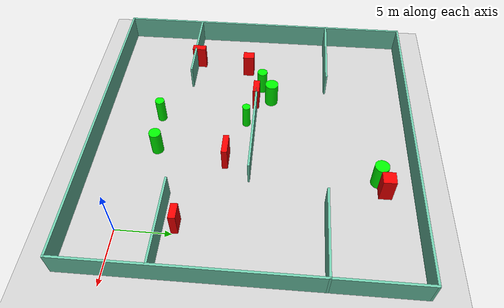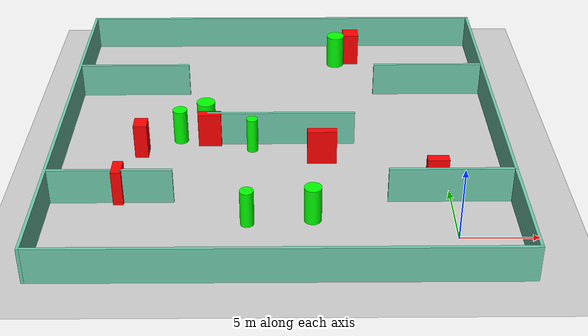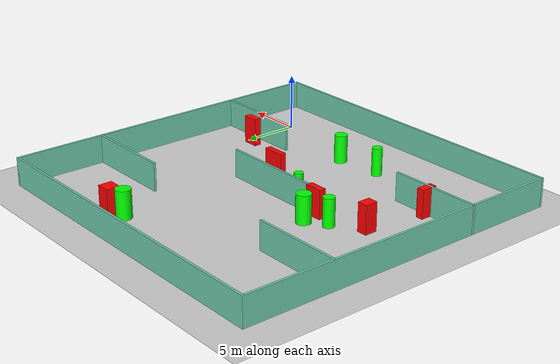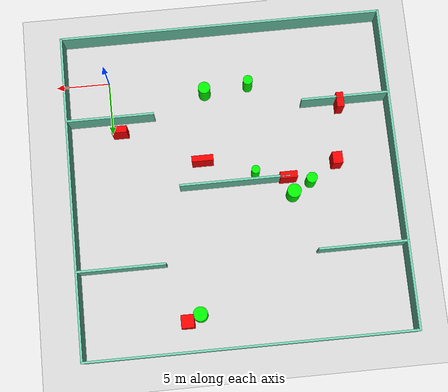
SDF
<sdf version="1.7">
 <world name="default">
  <light name="sun" type="directional">
   <pose>0 0 10 0 -0 0</pose>
   <diffuse>0.8 0.8 0.8 1</diffuse>
   <specular>0.2 0.2 0.2 1</specular>
   <attenuation>
    <range>1000</range>
    <constant>0.9</constant>
    <linear>0.01</linear>
    <quadratic>0.001</quadratic>
   </attenuation>
   <direction>-0.5 0.1 -0.9</direction>
   <spot><inner_angle>0</inner_angle><outer_angle>0</outer_angle><falloff>0</falloff></spot>
  </light>
  <model name="ground_plane">
   <static>1</static>
   <link name="link">
    <collision name="collision">
     <geometry><plane><normal>0 0 1</normal><size>100 100</size></plane></geometry>
     <surface>
      <contact><collide_bitmask>65535</collide_bitmask></contact>
      <friction><ode><mu>100</mu><mu2>50</mu2></ode></friction>
     </surface>
    </collision>
    <visual name="visual">
     <cast_shadows>0</cast_shadows>
     <geometry><plane><normal>0 0 1</normal><size>100 100</size></plane></geometry>
     <material>
      <script><uri>file://media/materials/scripts/gazebo.material</uri><name>Gazebo/Grey</name></script>
     </material>
    </visual>
   </link>
  </model>
  <gravity>0 0 -9.8</gravity>
  <magnetic_field>6e-06 2.3e-05 -4.2e-05</magnetic_field>
  <atmosphere type="adiabatic"/>
  <physics type="ode">
   <max_step_size>0.001</max_step_size>
   <real_time_factor>1</real_time_factor>
   <real_time_update_rate>1000</real_time_update_rate>
  </physics>
  <scene><ambient>0.4 0.4 0.4 1</ambient><background>0.7 0.7 0.7 1</background><shadows>1</shadows></scene>
  <spherical_coordinates>
   <surface_model>EARTH_WGS84</surface_model>
   <latitude_deg>0</latitude_deg>
   <longitude_deg>0</longitude_deg>
   <elevation>0</elevation>
   <heading_deg>0</heading_deg>
  </spherical_coordinates>
  <model name="my_base_walls">
   <link name="Wall_10">
    <collision name="Wall_10_Collision">
     <geometry><box><size>8.2 0.2 2.5</size></box></geometry>
     <pose>0 0 1.25 0 -0 0</pose>
    </collision>
    <visual name="Wall_10_Visual">
     <pose>0 0 1.25 0 -0 0</pose>
     <geometry><box><size>8.2 0.2 2.5</size></box></geometry>
     <material>
      <script><uri>file://media/materials/scripts/gazebo.material</uri><name>Gazebo/Grey</name></script>
      <ambient>0.435294 0.796078 0.67451 1</ambient>
     </material>
     <meta><layer>0</layer></meta>
    </visual>
    <pose>-11 -7 0 0 -0 0</pose>
   </link>
   <link name="Wall_12">
    <collision name="Wall_12_Collision">
     <geometry><box><size>8.2 0.2 2.5</size></box></geometry>
     <pose>0 0 1.25 0 -0 0</pose>
    </collision>
    <visual name="Wall_12_Visual">
     <pose>0 0 1.25 0 -0 0</pose>
     <geometry><box><size>8.2 0.2 2.5</size></box></geometry>
     <material>
      <script><uri>file://media/materials/scripts/gazebo.material</uri><name>Gazebo/Grey</name></script>
      <ambient>0.435294 0.796078 0.67451 1</ambient>
     </material>
     <meta><layer>0</layer></meta>
    </visual>
    <pose>-11 7 0 0 -0 0</pose>
   </link>
   <link name="Wall_14">
    <collision name="Wall_14_Collision">
     <geometry><box><size>8.2 0.2 2.5</size></box></geometry>
     <pose>0 0 1.25 0 -0 0</pose>
    </collision>
    <visual name="Wall_14_Visual">
     <pose>0 0 1.25 0 -0 0</pose>
     <geometry><box><size>8.2 0.2 2.5</size></box></geometry>
     <material>
      <script><uri>file://media/materials/scripts/gazebo.material</uri><name>Gazebo/Grey</name></script>
      <ambient>0.435294 0.796078 0.67451 1</ambient>
     </material>
     <meta><layer>0</layer></meta>
    </visual>
    <pose>11 7 0 0 -0 3.14159</pose>
   </link>
   <link name="Wall_16">
    <collision name="Wall_16_Collision">
     <geometry><box><size>10.2 0.2 2.5</size></box></geometry>
     <pose>0 0 1.25 0 -0 0</pose>
    </collision>
    <visual name="Wall_16_Visual">
     <pose>0 0 1.25 0 -0 0</pose>
     <geometry><box><size>10.2 0.2 2.5</size></box></geometry>
     <material>
      <script><uri>file://media/materials/scripts/gazebo.material</uri><name>Gazebo/Grey</name></script>
      <ambient>0.435294 0.796078 0.67451 1</ambient>
     </material>
     <meta><layer>0</layer></meta>
    </visual>
    <pose>0 0 0 0 -0 3.14159</pose>
   </link>
   <link name="Wall_2">
    <collision name="Wall_2_Collision">
     <geometry><box><size>30.2 0.2 2.5</size></box></geometry>
     <pose>0 0 1.25 0 -0 0</pose>
    </collision>
    <visual name="Wall_2_Visual">
     <pose>0 0 1.25 0 -0 0</pose>
     <geometry><box><size>30.2 0.2 2.5</size></box></geometry>
     <material>
      <script><uri>file://media/materials/scripts/gazebo.material</uri><name>Gazebo/Grey</name></script>
      <ambient>0.435294 0.796078 0.67451 1</ambient>
     </material>
     <meta><layer>0</layer></meta>
    </visual>
    <pose>0 -15 0 0 -0 3.14159</pose>
   </link>
   <link name="Wall_3">
    <collision name="Wall_3_Collision">
     <geometry><box><size>30.2 0.2 2.5</size></box></geometry>
     <pose>0 0 1.25 0 -0 0</pose>
    </collision>
    <visual name="Wall_3_Visual">
     <pose>0 0 1.25 0 -0 0</pose>
     <geometry><box><size>30.2 0.2 2.5</size></box></geometry>
     <material>
      <script><uri>file://media/materials/scripts/gazebo.material</uri><name>Gazebo/Grey</name></script>
      <ambient>0.435294 0.796078 0.67451 1</ambient>
     </material>
     <meta><layer>0</layer></meta>
    </visual>
    <pose>-15 0 0 0 -0 1.5708</pose>
   </link>
   <link name="Wall_4">
    <collision name="Wall_4_Collision">
     <geometry><box><size>30.2 0.2 2.5</size></box></geometry>
     <pose>0 0 1.25 0 -0 0</pose>
    </collision>
    <visual name="Wall_4_Visual">
     <pose>0 0 1.25 0 -0 0</pose>
     <geometry><box><size>30.2 0.2 2.5</size></box></geometry>
     <material>
      <script><uri>file://media/materials/scripts/gazebo.material</uri><name>Gazebo/Grey</name></script>
      <ambient>0.435294 0.796078 0.67451 1</ambient>
     </material>
     <meta><layer>0</layer></meta>
    </visual>
    <pose>0 15 0 0 -0 0</pose>
   </link>
   <link name="Wall_6">
    <collision name="Wall_6_Collision">
     <geometry><box><size>30.2 0.2 2.5</size></box></geometry>
     <pose>0 0 1.25 0 -0 0</pose>
    </collision>
    <visual name="Wall_6_Visual">
     <pose>0 0 1.25 0 -0 0</pose>
     <geometry><box><size>30.2 0.2 2.5</size></box></geometry>
     <material>
      <script><uri>file://media/materials/scripts/gazebo.material</uri><name>Gazebo/Grey</name></script>
      <ambient>0.435294 0.796078 0.67451 1</ambient>
     </material>
     <meta><layer>0</layer></meta>
    </visual>
    <pose>15 0 0 0 -0 1.5708</pose>
   </link>
   <link name="Wall_8">
    <collision name="Wall_8_Collision">
     <geometry><box><size>8.2 0.2 2.5</size></box></geometry>
     <pose>0 0 1.25 0 -0 0</pose>
    </collision>
    <visual name="Wall_8_Visual">
     <pose>0 0 1.25 0 -0 0</pose>
     <geometry><box><size>8.2 0.2 2.5</size></box></geometry>
     <material>
      <script><uri>file://media/materials/scripts/gazebo.material</uri><name>Gazebo/Grey</name></script>
      <ambient>0.435294 0.796078 0.67451 1</ambient>
     </material>
     <meta><layer>0</layer></meta>
    </visual>
    <pose>11 -7 0 0 -0 3.14159</pose>
   </link>
   <static>1</static>
   <pose>-11 11 0 0 -0 0</pose>
  </model>
  <model name="cylinder1">
   <static>1</static>
   <link name="link">
    <inertial>
     <mass>1</mass>
     <inertia><ixx>0.5</ixx><ixy>0</ixy><ixz>0</ixz><iyy>0.5</iyy><iyz>0</iyz><izz>1</izz></inertia>
    </inertial>
    <collision name="collision">
     <geometry><cylinder><radius>0.38787037618653075</radius><length>2.5</length></cylinder></geometry>
    </collision>
    <visual name="visual">
     <geometry><cylinder><radius>0.38787037618653075</radius><length>2.5</length></cylinder></geometry>
     <material>
      <ambient>0 1 0 1</ambient>
      <diffuse>0 1 0 1</diffuse>
      <specular>0.1 0.1 0.1 1</specular>
      <emissive>0 0 0 0</emissive>
     </material>
    </visual>
   </link>
   <pose>-12.991096063662296 10.180487461741812 1.25 0 0 0</pose>
  </model>
  <model name="cylinder2">
   <static>1</static>
   <link name="link">
    <inertial>
     <mass>1</mass>
     <inertia><ixx>0.5</ixx><ixy>0</ixy><ixz>0</ixz><iyy>0.5</iyy><iyz>0</iyz><izz>1</izz></inertia>
    </inertial>
    <collision name="collision">
     <geometry><cylinder><radius>0.6613510215848413</radius><length>2.5</length></cylinder></geometry>
    </collision>
    <visual name="visual">
     <geometry><cylinder><radius>0.6613510215848413</radius><length>2.5</length></cylinder></geometry>
     <material>
      <ambient>0 1 0 1</ambient>
      <diffuse>0 1 0 1</diffuse>
      <specular>0.1 0.1 0.1 1</specular>
      <emissive>0 0 0 0</emissive>
     </material>
    </visual>
   </link>
   <pose>-6.764813394824726 22.758688710193283 1.25 0 0 0</pose>
  </model>
  <model name="cylinder3">
   <static>1</static>
   <link name="link">
    <inertial>
     <mass>1</mass>
     <inertia><ixx>0.5</ixx><ixy>0</ixy><ixz>0</ixz><iyy>0.5</iyy><iyz>0</iyz><izz>1</izz></inertia>
    </inertial>
    <collision name="collision">
     <geometry><cylinder><radius>0.6424565191166074</radius><length>2.5</length></cylinder></geometry>
    </collision>
    <visual name="visual">
     <geometry><cylinder><radius>0.6424565191166074</radius><length>2.5</length></cylinder></geometry>
     <material>
      <ambient>0 1 0 1</ambient>
      <diffuse>0 1 0 1</diffuse>
      <specular>0.1 0.1 0.1 1</specular>
      <emissive>0 0 0 0</emissive>
     </material>
    </visual>
   </link>
   <pose>-16.297491580096835 12.48158096587843 1.25 0 0 0</pose>
  </model>
  <model name="cylinder4">
   <static>1</static>
   <link name="link">
    <inertial>
     <mass>1</mass>
     <inertia><ixx>0.5</ixx><ixy>0</ixy><ixz>0</ixz><iyy>0.5</iyy><iyz>0</iyz><izz>1</izz></inertia>
    </inertial>
    <collision name="collision">
     <geometry><cylinder><radius>0.4486994040065678</radius><length>2.5</length></cylinder></geometry>
    </collision>
    <visual name="visual">
     <geometry><cylinder><radius>0.4486994040065678</radius><length>2.5</length></cylinder></geometry>
     <material>
      <ambient>0 1 0 1</ambient>
      <diffuse>0 1 0 1</diffuse>
      <specular>0.1 0.1 0.1 1</specular>
      <emissive>0 0 0 0</emissive>
     </material>
    </visual>
   </link>
   <pose>-13.113872841108835 1.6235817245841497 1.25 0 0 0</pose>
  </model>
  <model name="cylinder5">
   <static>1</static>
   <link name="link">
    <inertial>
     <mass>1</mass>
     <inertia><ixx>0.5</ixx><ixy>0</ixy><ixz>0</ixz><iyy>0.5</iyy><iyz>0</iyz><izz>1</izz></inertia>
    </inertial>
    <collision name="collision">
     <geometry><cylinder><radius>0.5642587403566188</radius><length>2.5</length></cylinder></geometry>
    </collision>
    <visual name="visual">
     <geometry><cylinder><radius>0.5642587403566188</radius><length>2.5</length></cylinder></geometry>
     <material>
      <ambient>0 1 0 1</ambient>
      <diffuse>0 1 0 1</diffuse>
      <specular>0.1 0.1 0.1 1</specular>
      <emissive>0 0 0 0</emissive>
     </material>
    </visual>
   </link>
   <pose>-8.98427480009152 1.982459275929708 1.25 0 0 0</pose>
  </model>
  <model name="cylinder6">
   <static>1</static>
   <link name="link">
    <inertial>
     <mass>1</mass>
     <inertia><ixx>0.5</ixx><ixy>0</ixy><ixz>0</ixz><iyy>0.5</iyy><iyz>0</iyz><izz>1</izz></inertia>
    </inertial>
    <collision name="collision">
     <geometry><cylinder><radius>0.5012282190228918</radius><length>2.5</length></cylinder></geometry>
    </collision>
    <visual name="visual">
     <geometry><cylinder><radius>0.5012282190228918</radius><length>2.5</length></cylinder></geometry>
     <material>
      <ambient>0 1 0 1</ambient>
      <diffuse>0 1 0 1</diffuse>
      <specular>0.1 0.1 0.1 1</specular>
      <emissive>0 0 0 0</emissive>
     </material>
    </visual>
   </link>
   <pose>-18.035218396242744 11.418623451470324 1.25 0 0 0</pose>
  </model>
  <model name="box1">
   <static>1</static>
   <link name="link">
    <inertial>
     <mass>1</mass>
     <inertia><ixx>0.083</ixx><ixy>0</ixy><ixz>0</ixz><iyy>0.083</iyy><iyz>0</iyz><izz>0.083</izz></inertia>
    </inertial>
    <collision name="collision">
     <geometry><box><size>1.4261905094574865 0.620071553119766 2.5</size></box></geometry>
    </collision>
    <visual name="visual">
     <geometry><box><size>1.4261905094574865 0.620071553119766 2.5</size></box></geometry>
     <material>
      <ambient>1 0 0 1</ambient>
      <diffuse>1 0 0 1</diffuse>
      <specular>0.1 0.1 0.1 1</specular>
      <emissive>0 0 0 0</emissive>
     </material>
    </visual>
    <sensor name="my_contact" type="contact">
     <contact><collision>box_collision</collision><topic>__default_topic__</topic></contact>
    </sensor>
   </link>
   <pose>-0.8065190389047352 5.214111480915754 1.25 0 0 0</pose>
  </model>
  <model name="box2">
   <static>1</static>
   <link name="link">
    <inertial>
     <mass>1</mass>
     <inertia><ixx>0.083</ixx><ixy>0</ixy><ixz>0</ixz><iyy>0.083</iyy><iyz>0</iyz><izz>0.083</izz></inertia>
    </inertial>
    <collision name="collision">
     <geometry><box><size>0.6634869547397191 1.38746978430804 2.5</size></box></geometry>
    </collision>
    <visual name="visual">
     <geometry><box><size>0.6634869547397191 1.38746978430804 2.5</size></box></geometry>
     <material>
      <ambient>1 0 0 1</ambient>
      <diffuse>1 0 0 1</diffuse>
      <specular>0.1 0.1 0.1 1</specular>
      <emissive>0 0 0 0</emissive>
     </material>
    </visual>
    <sensor name="my_contact" type="contact">
     <contact><collision>box_collision</collision><topic>__default_topic__</topic></contact>
    </sensor>
   </link>
   <pose>-21.45948775209076 4.313681549045588 1.25 0 0 0</pose>
  </model>
  <model name="box3">
   <static>1</static>
   <link name="link">
    <inertial>
     <mass>1</mass>
     <inertia><ixx>0.083</ixx><ixy>0</ixy><ixz>0</ixz><iyy>0.083</iyy><iyz>0</iyz><izz>0.083</izz></inertia>
    </inertial>
    <collision name="collision">
     <geometry><box><size>0.9214452729962939 1.1143409137536349 2.5</size></box></geometry>
    </collision>
    <visual name="visual">
     <geometry><box><size>0.9214452729962939 1.1143409137536349 2.5</size></box></geometry>
     <material>
      <ambient>1 0 0 1</ambient>
      <diffuse>1 0 0 1</diffuse>
      <specular>0.1 0.1 0.1 1</specular>
      <emissive>0 0 0 0</emissive>
     </material>
    </visual>
    <sensor name="my_contact" type="contact">
     <contact><collision>box_collision</collision><topic>__default_topic__</topic></contact>
    </sensor>
   </link>
   <pose>-20.580604503373095 9.779120713160257 1.25 0 0 0</pose>
  </model>
  <model name="box4">
   <static>1</static>
   <link name="link">
    <inertial>
     <mass>1</mass>
     <inertia><ixx>0.083</ixx><ixy>0</ixy><ixz>0</ixz><iyy>0.083</iyy><iyz>0</iyz><izz>0.083</izz></inertia>
    </inertial>
    <collision name="collision">
     <geometry><box><size>1.5880577208954516 0.6218263990958968 2.5</size></box></geometry>
    </collision>
    <visual name="visual">
     <geometry><box><size>1.5880577208954516 0.6218263990958968 2.5</size></box></geometry>
     <material>
      <ambient>1 0 0 1</ambient>
      <diffuse>1 0 0 1</diffuse>
      <specular>0.1 0.1 0.1 1</specular>
      <emissive>0 0 0 0</emissive>
     </material>
    </visual>
    <sensor name="my_contact" type="contact">
     <contact><collision>box_collision</collision><topic>__default_topic__</topic></contact>
    </sensor>
   </link>
   <pose>-15.956296059060378 10.944013668077115 1.25 0 0 0</pose>
  </model>
  <model name="box5">
   <static>1</static>
   <link name="link">
    <inertial>
     <mass>1</mass>
     <inertia><ixx>0.083</ixx><ixy>0</ixy><ixz>0</ixz><iyy>0.083</iyy><iyz>0</iyz><izz>0.083</izz></inertia>
    </inertial>
    <collision name="collision">
     <geometry><box><size>1.180633040818867 1.1930139348203879 2.5</size></box></geometry>
    </collision>
    <visual name="visual">
     <geometry><box><size>1.180633040818867 1.1930139348203879 2.5</size></box></geometry>
     <material>
      <ambient>1 0 0 1</ambient>
      <diffuse>1 0 0 1</diffuse>
      <specular>0.1 0.1 0.1 1</specular>
      <emissive>0 0 0 0</emissive>
     </material>
    </visual>
    <sensor name="my_contact" type="contact">
     <contact><collision>box_collision</collision><topic>__default_topic__</topic></contact>
    </sensor>
   </link>
   <pose>-5.577266324990472 23.2898768605919 1.25 0 0 0</pose>
  </model>
  <model name="box6">
   <static>1</static>
   <link name="link">
    <inertial>
     <mass>1</mass>
     <inertia><ixx>0.083</ixx><ixy>0</ixy><ixz>0</ixz><iyy>0.083</iyy><iyz>0</iyz><izz>0.083</izz></inertia>
    </inertial>
    <collision name="collision">
     <geometry><box><size>1.9967836602832152 0.5445739506986186 2.5</size></box></geometry>
    </collision>
    <visual name="visual">
     <geometry><box><size>1.9967836602832152 0.5445739506986186 2.5</size></box></geometry>
     <material>
      <ambient>1 0 0 1</ambient>
      <diffuse>1 0 0 1</diffuse>
      <specular>0.1 0.1 0.1 1</specular>
      <emissive>0 0 0 0</emissive>
     </material>
    </visual>
    <sensor name="my_contact" type="contact">
     <contact><collision>box_collision</collision><topic>__default_topic__</topic></contact>
    </sensor>
   </link>
   <pose>-8.224403820729414 8.661851756254698 1.25 0 0 0</pose>
  </model>
 </world>
</sdf>
